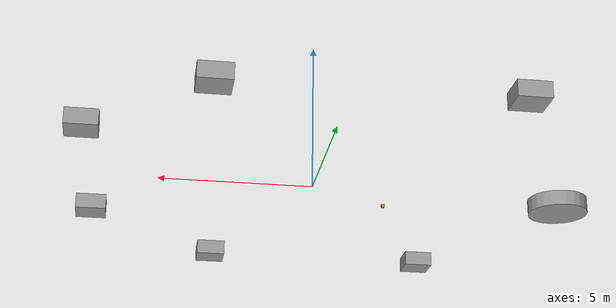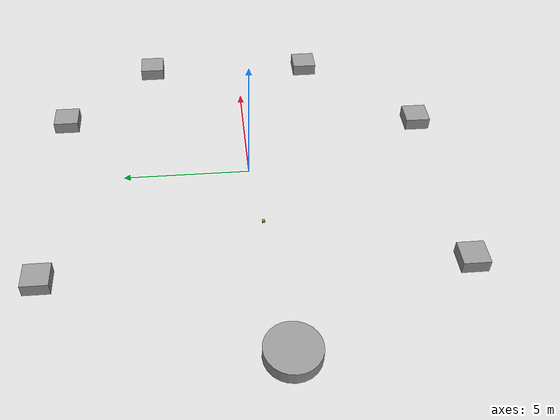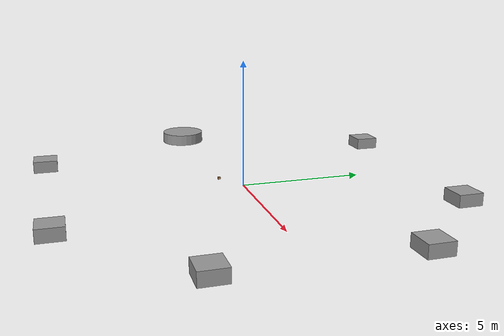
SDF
<?xml version='1.0'?>
<sdf version='1.6'>
  <model name='block'>
    <link name='link_8'>
      <pose frame=''>-5.13268 -7.61819 0.0625 0 -0 0</pose>
      <inertial>
        <mass>1</mass>
        <inertia>
          <ixx>0.166667</ixx>
          <ixy>0</ixy>
          <ixz>0</ixz>
          <iyy>0.166667</iyy>
          <iyz>0</iyz>
          <izz>0.166667</izz>
        </inertia>
        <pose frame=''>0 0 0 0 -0 0</pose>
      </inertial>
      <gravity>1</gravity>
      <self_collide>0</self_collide>
      <kinematic>0</kinematic>
      <visual name='visual'>
        <pose frame=''>0 0 0 0 -0 0</pose>
        <geometry>
          <box>
            <size>1 1 0.5</size>
          </box>
        </geometry>
        <material>
          <lighting>1</lighting>
          <script>
            <uri>file://media/materials/scripts/gazebo.material</uri>
            <name>Gazebo/Grey</name>
          </script>
          <shader type='pixel'>
            <normal_map>__default__</normal_map>
          </shader>
          <ambient>0.3 0.3 0.3 1</ambient>
          <diffuse>0.7 0.7 0.7 1</diffuse>
          <specular>0.01 0.01 0.01 1</specular>
          <emissive>0 0 0 1</emissive>
        </material>
        <transparency>0</transparency>
        <cast_shadows>1</cast_shadows>
      </visual>
      <collision name='collision'>
        <laser_retro>0</laser_retro>
        <max_contacts>10</max_contacts>
        <pose frame=''>0 0 0 0 -0 0</pose>
        <geometry>
          <box>
            <size>1 1 0.5</size>
          </box>
        </geometry>
        <surface>
          <friction>
            <ode>
              <mu>1</mu>
              <mu2>1</mu2>
              <fdir1>0 0 0</fdir1>
              <slip1>0</slip1>
              <slip2>0</slip2>
            </ode>
            <torsional>
              <coefficient>1</coefficient>
              <patch_radius>0</patch_radius>
              <surface_radius>0</surface_radius>
              <use_patch_radius>1</use_patch_radius>
              <ode>
                <slip>0</slip>
              </ode>
            </torsional>
          </friction>
          <bounce>
            <restitution_coefficient>0</restitution_coefficient>
            <threshold>1e+06</threshold>
          </bounce>
          <contact>
            <collide_without_contact>0</collide_without_contact>
            <collide_without_contact_bitmask>1</collide_without_contact_bitmask>
            <collide_bitmask>1</collide_bitmask>
            <ode>
              <soft_cfm>0</soft_cfm>
              <soft_erp>0.2</soft_erp>
              <kp>1e+13</kp>
              <kd>1</kd>
              <max_vel>0.01</max_vel>
              <min_depth>0</min_depth>
            </ode>
            <bullet>
              <split_impulse>1</split_impulse>
              <split_impulse_penetration_threshold>-0.01</split_impulse_penetration_threshold>
              <soft_cfm>0</soft_cfm>
              <soft_erp>0.2</soft_erp>
              <kp>1e+13</kp>
              <kd>1</kd>
            </bullet>
          </contact>
        </surface>
      </collision>
    </link>
    <link name='link_8_clone'>
      <pose frame=''>2.80195 -7.44621 0.0625 0 -0 0</pose>
      <inertial>
        <mass>1</mass>
        <inertia>
          <ixx>0.166667</ixx>
          <ixy>0</ixy>
          <ixz>0</ixz>
          <iyy>0.166667</iyy>
          <iyz>0</iyz>
          <izz>0.166667</izz>
        </inertia>
        <pose frame=''>0 0 0 0 -0 0</pose>
      </inertial>
      <self_collide>0</self_collide>
      <kinematic>0</kinematic>
      <visual name='visual'>
        <pose frame=''>0 0 0 0 -0 0</pose>
        <geometry>
          <box>
            <size>1 1 0.5</size>
          </box>
        </geometry>
        <material>
          <lighting>1</lighting>
          <script>
            <uri>file://media/materials/scripts/gazebo.material</uri>
            <name>Gazebo/Grey</name>
          </script>
          <shader type='pixel'>
            <normal_map>__default__</normal_map>
          </shader>
          <ambient>0.3 0.3 0.3 1</ambient>
          <diffuse>0.7 0.7 0.7 1</diffuse>
          <specular>0.01 0.01 0.01 1</specular>
          <emissive>0 0 0 1</emissive>
        </material>
        <transparency>0</transparency>
        <cast_shadows>1</cast_shadows>
      </visual>
      <collision name='collision'>
        <laser_retro>0</laser_retro>
        <max_contacts>10</max_contacts>
        <pose frame=''>0 0 0 0 -0 0</pose>
        <geometry>
          <box>
            <size>1 1 0.5</size>
          </box>
        </geometry>
        <surface>
          <friction>
            <ode>
              <mu>1</mu>
              <mu2>1</mu2>
              <fdir1>0 0 0</fdir1>
              <slip1>0</slip1>
              <slip2>0</slip2>
            </ode>
            <torsional>
              <coefficient>1</coefficient>
              <patch_radius>0</patch_radius>
              <surface_radius>0</surface_radius>
              <use_patch_radius>1</use_patch_radius>
              <ode>
                <slip>0</slip>
              </ode>
            </torsional>
          </friction>
          <bounce>
            <restitution_coefficient>0</restitution_coefficient>
            <threshold>1e+06</threshold>
          </bounce>
          <contact>
            <collide_without_contact>0</collide_without_contact>
            <collide_without_contact_bitmask>1</collide_without_contact_bitmask>
            <collide_bitmask>1</collide_bitmask>
            <ode>
              <soft_cfm>0</soft_cfm>
              <soft_erp>0.2</soft_erp>
              <kp>1e+13</kp>
              <kd>1</kd>
              <max_vel>0.01</max_vel>
              <min_depth>0</min_depth>
            </ode>
            <bullet>
              <split_impulse>1</split_impulse>
              <split_impulse_penetration_threshold>-0.01</split_impulse_penetration_threshold>
              <soft_cfm>0</soft_cfm>
              <soft_erp>0.2</soft_erp>
              <kp>1e+13</kp>
              <kd>1</kd>
            </bullet>
          </contact>
        </surface>
      </collision>
    </link>
    <link name='link_8_clone_clone'>
      <pose frame=''>7.13715 -3.11564 0.0625 0 -0 0</pose>
      <inertial>
        <mass>1</mass>
        <inertia>
          <ixx>0.166667</ixx>
          <ixy>0</ixy>
          <ixz>0</ixz>
          <iyy>0.166667</iyy>
          <iyz>0</iyz>
          <izz>0.166667</izz>
        </inertia>
        <pose frame=''>0 0 0 0 -0 0</pose>
      </inertial>
      <self_collide>0</self_collide>
      <kinematic>0</kinematic>
      <visual name='visual'>
        <pose frame=''>0 0 0 0 -0 0</pose>
        <geometry>
          <box>
            <size>1 1 0.5</size>
          </box>
        </geometry>
        <material>
          <lighting>1</lighting>
          <script>
            <uri>file://media/materials/scripts/gazebo.material</uri>
            <name>Gazebo/Grey</name>
          </script>
          <shader type='pixel'>
            <normal_map>__default__</normal_map>
          </shader>
          <ambient>0.3 0.3 0.3 1</ambient>
          <diffuse>0.7 0.7 0.7 1</diffuse>
          <specular>0.01 0.01 0.01 1</specular>
          <emissive>0 0 0 1</emissive>
        </material>
        <transparency>0</transparency>
        <cast_shadows>1</cast_shadows>
      </visual>
      <collision name='collision'>
        <laser_retro>0</laser_retro>
        <max_contacts>10</max_contacts>
        <pose frame=''>0 0 0 0 -0 0</pose>
        <geometry>
          <box>
            <size>1 1 0.5</size>
          </box>
        </geometry>
        <surface>
          <friction>
            <ode>
              <mu>1</mu>
              <mu2>1</mu2>
              <fdir1>0 0 0</fdir1>
              <slip1>0</slip1>
              <slip2>0</slip2>
            </ode>
            <torsional>
              <coefficient>1</coefficient>
              <patch_radius>0</patch_radius>
              <surface_radius>0</surface_radius>
              <use_patch_radius>1</use_patch_radius>
              <ode>
                <slip>0</slip>
              </ode>
            </torsional>
          </friction>
          <bounce>
            <restitution_coefficient>0</restitution_coefficient>
            <threshold>1e+06</threshold>
          </bounce>
          <contact>
            <collide_without_contact>0</collide_without_contact>
            <collide_without_contact_bitmask>1</collide_without_contact_bitmask>
            <collide_bitmask>1</collide_bitmask>
            <ode>
              <soft_cfm>0</soft_cfm>
              <soft_erp>0.2</soft_erp>
              <kp>1e+13</kp>
              <kd>1</kd>
              <max_vel>0.01</max_vel>
              <min_depth>0</min_depth>
            </ode>
            <bullet>
              <split_impulse>1</split_impulse>
              <split_impulse_penetration_threshold>-0.01</split_impulse_penetration_threshold>
              <soft_cfm>0</soft_cfm>
              <soft_erp>0.2</soft_erp>
              <kp>1e+13</kp>
              <kd>1</kd>
            </bullet>
          </contact>
        </surface>
      </collision>
    </link>
    <link name='link_8_clone_clone_0'>
      <pose frame=''>3.74124 7.564 0.0625 0 -0 0</pose>
      <inertial>
        <mass>1</mass>
        <inertia>
          <ixx>0.166667</ixx>
          <ixy>0</ixy>
          <ixz>0</ixz>
          <iyy>0.166667</iyy>
          <iyz>0</iyz>
          <izz>0.166667</izz>
        </inertia>
        <pose frame=''>0 0 0 0 -0 0</pose>
      </inertial>
      <self_collide>0</self_collide>
      <kinematic>0</kinematic>
      <visual name='visual'>
        <pose frame=''>0 0 0 0 -0 0</pose>
        <geometry>
          <box>
            <size>1 1 0.5</size>
          </box>
        </geometry>
        <material>
          <lighting>1</lighting>
          <script>
            <uri>file://media/materials/scripts/gazebo.material</uri>
            <name>Gazebo/Grey</name>
          </script>
          <shader type='pixel'>
            <normal_map>__default__</normal_map>
          </shader>
          <ambient>0.3 0.3 0.3 1</ambient>
          <diffuse>0.7 0.7 0.7 1</diffuse>
          <specular>0.01 0.01 0.01 1</specular>
          <emissive>0 0 0 1</emissive>
        </material>
        <transparency>0</transparency>
        <cast_shadows>1</cast_shadows>
      </visual>
      <collision name='collision'>
        <laser_retro>0</laser_retro>
        <max_contacts>10</max_contacts>
        <pose frame=''>0 0 0 0 -0 0</pose>
        <geometry>
          <box>
            <size>1 1 0.5</size>
          </box>
        </geometry>
        <surface>
          <friction>
            <ode>
              <mu>1</mu>
              <mu2>1</mu2>
              <fdir1>0 0 0</fdir1>
              <slip1>0</slip1>
              <slip2>0</slip2>
            </ode>
            <torsional>
              <coefficient>1</coefficient>
              <patch_radius>0</patch_radius>
              <surface_radius>0</surface_radius>
              <use_patch_radius>1</use_patch_radius>
              <ode>
                <slip>0</slip>
              </ode>
            </torsional>
          </friction>
          <bounce>
            <restitution_coefficient>0</restitution_coefficient>
            <threshold>1e+06</threshold>
          </bounce>
          <contact>
            <collide_without_contact>0</collide_without_contact>
            <collide_without_contact_bitmask>1</collide_without_contact_bitmask>
            <collide_bitmask>1</collide_bitmask>
            <ode>
              <soft_cfm>0</soft_cfm>
              <soft_erp>0.2</soft_erp>
              <kp>1e+13</kp>
              <kd>1</kd>
              <max_vel>0.01</max_vel>
              <min_depth>0</min_depth>
            </ode>
            <bullet>
              <split_impulse>1</split_impulse>
              <split_impulse_penetration_threshold>-0.01</split_impulse_penetration_threshold>
              <soft_cfm>0</soft_cfm>
              <soft_erp>0.2</soft_erp>
              <kp>1e+13</kp>
              <kd>1</kd>
            </bullet>
          </contact>
        </surface>
      </collision>
    </link>
    <link name='link_8_clone_clone_0_clone'>
      <pose frame=''>-4.92601 7.78057 0.0625 0 -0 0</pose>
      <inertial>
        <mass>1</mass>
        <inertia>
          <ixx>0.166667</ixx>
          <ixy>0</ixy>
          <ixz>0</ixz>
          <iyy>0.166667</iyy>
          <iyz>0</iyz>
          <izz>0.166667</izz>
        </inertia>
        <pose frame=''>0 0 0 0 -0 0</pose>
      </inertial>
      <self_collide>0</self_collide>
      <kinematic>0</kinematic>
      <visual name='visual'>
        <pose frame=''>0 0 0 0 -0 0</pose>
        <geometry>
          <box>
            <size>1 1 0.5</size>
          </box>
        </geometry>
        <material>
          <lighting>1</lighting>
          <script>
            <uri>file://media/materials/scripts/gazebo.material</uri>
            <name>Gazebo/Grey</name>
          </script>
          <shader type='pixel'>
            <normal_map>__default__</normal_map>
          </shader>
          <ambient>0.3 0.3 0.3 1</ambient>
          <diffuse>0.7 0.7 0.7 1</diffuse>
          <specular>0.01 0.01 0.01 1</specular>
          <emissive>0 0 0 1</emissive>
        </material>
        <transparency>0</transparency>
        <cast_shadows>1</cast_shadows>
      </visual>
      <collision name='collision'>
        <laser_retro>0</laser_retro>
        <max_contacts>10</max_contacts>
        <pose frame=''>0 0 0 0 -0 0</pose>
        <geometry>
          <box>
            <size>1 1 0.5</size>
          </box>
        </geometry>
        <surface>
          <friction>
            <ode>
              <mu>1</mu>
              <mu2>1</mu2>
              <fdir1>0 0 0</fdir1>
              <slip1>0</slip1>
              <slip2>0</slip2>
            </ode>
            <torsional>
              <coefficient>1</coefficient>
              <patch_radius>0</patch_radius>
              <surface_radius>0</surface_radius>
              <use_patch_radius>1</use_patch_radius>
              <ode>
                <slip>0</slip>
              </ode>
            </torsional>
          </friction>
          <bounce>
            <restitution_coefficient>0</restitution_coefficient>
            <threshold>1e+06</threshold>
          </bounce>
          <contact>
            <collide_without_contact>0</collide_without_contact>
            <collide_without_contact_bitmask>1</collide_without_contact_bitmask>
            <collide_bitmask>1</collide_bitmask>
            <ode>
              <soft_cfm>0</soft_cfm>
              <soft_erp>0.2</soft_erp>
              <kp>1e+13</kp>
              <kd>1</kd>
              <max_vel>0.01</max_vel>
              <min_depth>0</min_depth>
            </ode>
            <bullet>
              <split_impulse>1</split_impulse>
              <split_impulse_penetration_threshold>-0.01</split_impulse_penetration_threshold>
              <soft_cfm>0</soft_cfm>
              <soft_erp>0.2</soft_erp>
              <kp>1e+13</kp>
              <kd>1</kd>
            </bullet>
          </contact>
        </surface>
      </collision>
    </link>
    <link name='link_8_clone_clone_clone'>
      <pose frame=''>7.31153 3.96093 0.0625 0 -0 0</pose>
      <inertial>
        <mass>1</mass>
        <inertia>
          <ixx>0.166667</ixx>
          <ixy>0</ixy>
          <ixz>0</ixz>
          <iyy>0.166667</iyy>
          <iyz>0</iyz>
          <izz>0.166667</izz>
        </inertia>
        <pose frame=''>0 0 0 0 -0 0</pose>
      </inertial>
      <self_collide>0</self_collide>
      <kinematic>0</kinematic>
      <visual name='visual'>
        <pose frame=''>0 0 0 0 -0 0</pose>
        <geometry>
          <box>
            <size>1 1 0.5</size>
          </box>
        </geometry>
        <material>
          <lighting>1</lighting>
          <script>
            <uri>file://media/materials/scripts/gazebo.material</uri>
            <name>Gazebo/Grey</name>
          </script>
          <shader type='pixel'>
            <normal_map>__default__</normal_map>
          </shader>
          <ambient>0.3 0.3 0.3 1</ambient>
          <diffuse>0.7 0.7 0.7 1</diffuse>
          <specular>0.01 0.01 0.01 1</specular>
          <emissive>0 0 0 1</emissive>
        </material>
        <transparency>0</transparency>
        <cast_shadows>1</cast_shadows>
      </visual>
      <collision name='collision'>
        <laser_retro>0</laser_retro>
        <max_contacts>10</max_contacts>
        <pose frame=''>0 0 0 0 -0 0</pose>
        <geometry>
          <box>
            <size>1 1 0.5</size>
          </box>
        </geometry>
        <surface>
          <friction>
            <ode>
              <mu>1</mu>
              <mu2>1</mu2>
              <fdir1>0 0 0</fdir1>
              <slip1>0</slip1>
              <slip2>0</slip2>
            </ode>
            <torsional>
              <coefficient>1</coefficient>
              <patch_radius>0</patch_radius>
              <surface_radius>0</surface_radius>
              <use_patch_radius>1</use_patch_radius>
              <ode>
                <slip>0</slip>
              </ode>
            </torsional>
          </friction>
          <bounce>
            <restitution_coefficient>0</restitution_coefficient>
            <threshold>1e+06</threshold>
          </bounce>
          <contact>
            <collide_without_contact>0</collide_without_contact>
            <collide_without_contact_bitmask>1</collide_without_contact_bitmask>
            <collide_bitmask>1</collide_bitmask>
            <ode>
              <soft_cfm>0</soft_cfm>
              <soft_erp>0.2</soft_erp>
              <kp>1e+13</kp>
              <kd>1</kd>
              <max_vel>0.01</max_vel>
              <min_depth>0</min_depth>
            </ode>
            <bullet>
              <split_impulse>1</split_impulse>
              <split_impulse_penetration_threshold>-0.01</split_impulse_penetration_threshold>
              <soft_cfm>0</soft_cfm>
              <soft_erp>0.2</soft_erp>
              <kp>1e+13</kp>
              <kd>1</kd>
            </bullet>
          </contact>
        </surface>
      </collision>
    </link>
    <link name='link_9'>
      <pose frame=''>-8.53487 -0.749857 0.0625 0 -0 0</pose>
      <inertial>
        <mass>1</mass>
        <inertia>
          <ixx>0.145833</ixx>
          <ixy>0</ixy>
          <ixz>0</ixz>
          <iyy>0.145833</iyy>
          <iyz>0</iyz>
          <izz>0.125</izz>
        </inertia>
        <pose frame=''>0 0 0 0 -0 0</pose>
      </inertial>
      <gravity>1</gravity>
      <self_collide>0</self_collide>
      <kinematic>0</kinematic>
      <visual name='visual'>
        <pose frame=''>0 0 0 0 -0 0</pose>
        <geometry>
          <cylinder>
            <radius>1</radius>
            <length>0.5</length>
          </cylinder>
        </geometry>
        <material>
          <lighting>1</lighting>
          <script>
            <uri>file://media/materials/scripts/gazebo.material</uri>
            <name>Gazebo/Grey</name>
          </script>
          <shader type='pixel'>
            <normal_map>__default__</normal_map>
          </shader>
          <ambient>0.3 0.3 0.3 1</ambient>
          <diffuse>0.7 0.7 0.7 1</diffuse>
          <specular>0.01 0.01 0.01 1</specular>
          <emissive>0 0 0 1</emissive>
        </material>
        <transparency>0</transparency>
        <cast_shadows>1</cast_shadows>
      </visual>
      <collision name='collision'>
        <laser_retro>0</laser_retro>
        <max_contacts>10</max_contacts>
        <pose frame=''>0 0 0 0 -0 0</pose>
        <geometry>
          <cylinder>
            <radius>1</radius>
            <length>0.5</length>
          </cylinder>
        </geometry>
        <surface>
          <friction>
            <ode>
              <mu>1</mu>
              <mu2>1</mu2>
              <fdir1>0 0 0</fdir1>
              <slip1>0</slip1>
              <slip2>0</slip2>
            </ode>
            <torsional>
              <coefficient>1</coefficient>
              <patch_radius>0</patch_radius>
              <surface_radius>0</surface_radius>
              <use_patch_radius>1</use_patch_radius>
              <ode>
                <slip>0</slip>
              </ode>
            </torsional>
          </friction>
          <bounce>
            <restitution_coefficient>0</restitution_coefficient>
            <threshold>1e+06</threshold>
          </bounce>
          <contact>
            <collide_without_contact>0</collide_without_contact>
            <collide_without_contact_bitmask>1</collide_without_contact_bitmask>
            <collide_bitmask>1</collide_bitmask>
            <ode>
              <soft_cfm>0</soft_cfm>
              <soft_erp>0.2</soft_erp>
              <kp>1e+13</kp>
              <kd>1</kd>
              <max_vel>0.01</max_vel>
              <min_depth>0</min_depth>
            </ode>
            <bullet>
              <split_impulse>1</split_impulse>
              <split_impulse_penetration_threshold>-0.01</split_impulse_penetration_threshold>
              <soft_cfm>0</soft_cfm>
              <soft_erp>0.2</soft_erp>
              <kp>1e+13</kp>
              <kd>1</kd>
            </bullet>
          </contact>
        </surface>
      </collision>
    </link>
    <model name='wood_cube_10cm'>
      <link name='link'>
        <pose frame=''>0 0 0.05 0 -0 0</pose>
        <inertial>
          <mass>0.5167</mass>
          <inertia>
            <ixx>0.000861167</ixx>
            <ixy>0</ixy>
            <ixz>0</ixz>
            <iyy>0.000861167</iyy>
            <iyz>0</iyz>
            <izz>0.000861167</izz>
          </inertia>
        </inertial>
        <collision name='collision'>
          <geometry>
            <box>
              <size>0.1 0.1 0.1</size>
            </box>
          </geometry>
          <surface>
            <contact>
              <poissons_ratio>0.347</poissons_ratio>
              <elastic_modulus>8.8e+09</elastic_modulus>
              <ode>
                <kp>100000</kp>
                <kd>100</kd>
                <max_vel>100</max_vel>
                <min_depth>0.001</min_depth>
              </ode>
            </contact>
            <friction>
              <torsional>
                <coefficient>1</coefficient>
                <use_patch_radius>0</use_patch_radius>
                <surface_radius>0.01</surface_radius>
              </torsional>
            </friction>
          </surface>
        </collision>
        <visual name='visual'>
          <geometry>
            <box>
              <size>0.1 0.1 0.1</size>
            </box>
          </geometry>
          <material>
            <script>
              <uri>file://media/materials/scripts/gazebo.material</uri>
              <name>Gazebo/Wood</name>
            </script>
          </material>
        </visual>
      </link>
      <pose frame=''>-2.39831 -0.375687 -0.4375 0 -0 0</pose>
    </model>
    <static>0</static>
    <allow_auto_disable>1</allow_auto_disable>
  </model>
</sdf>
